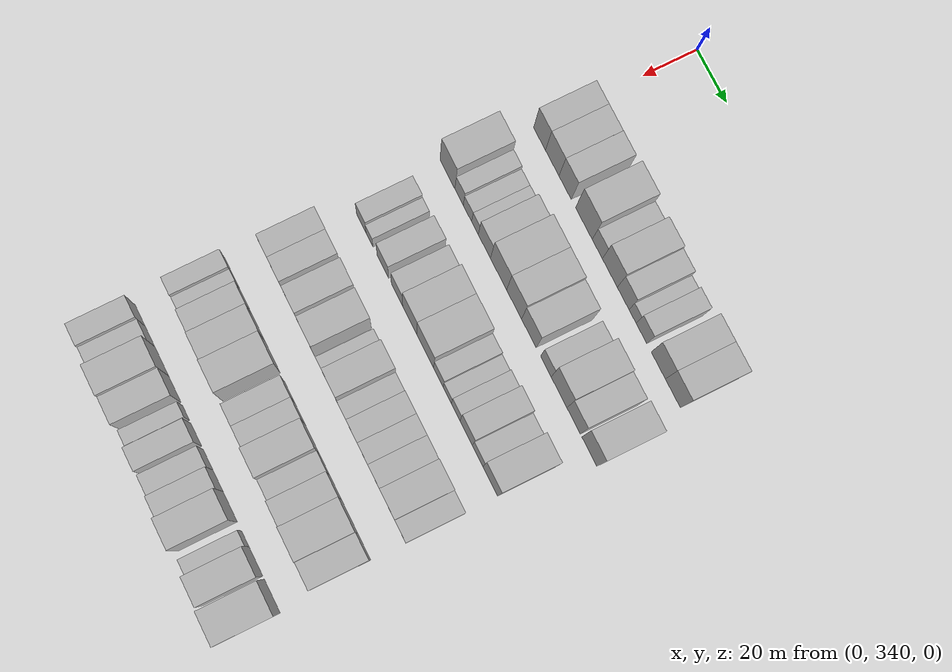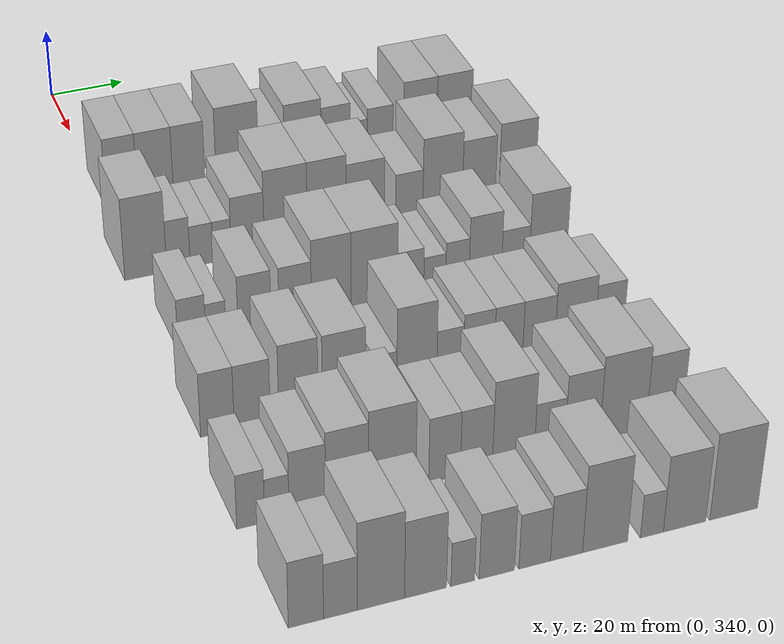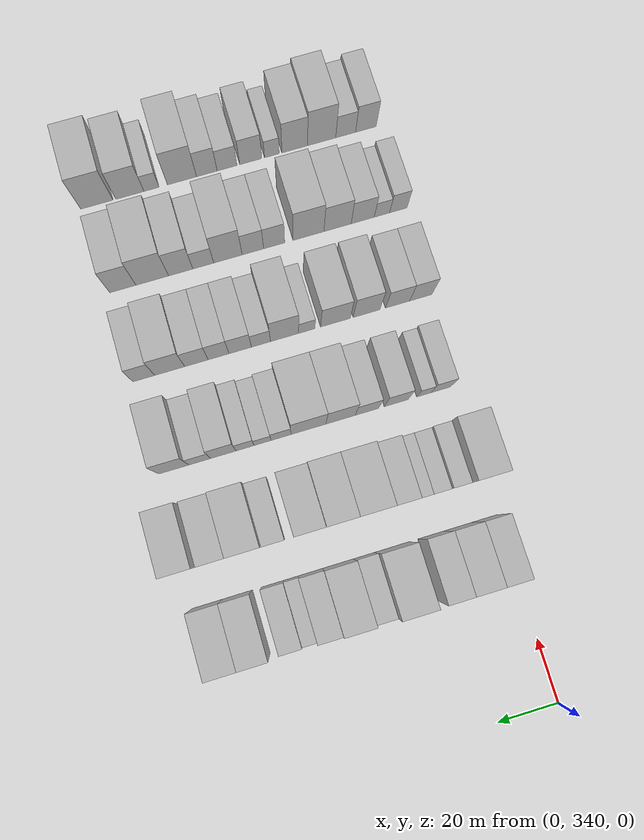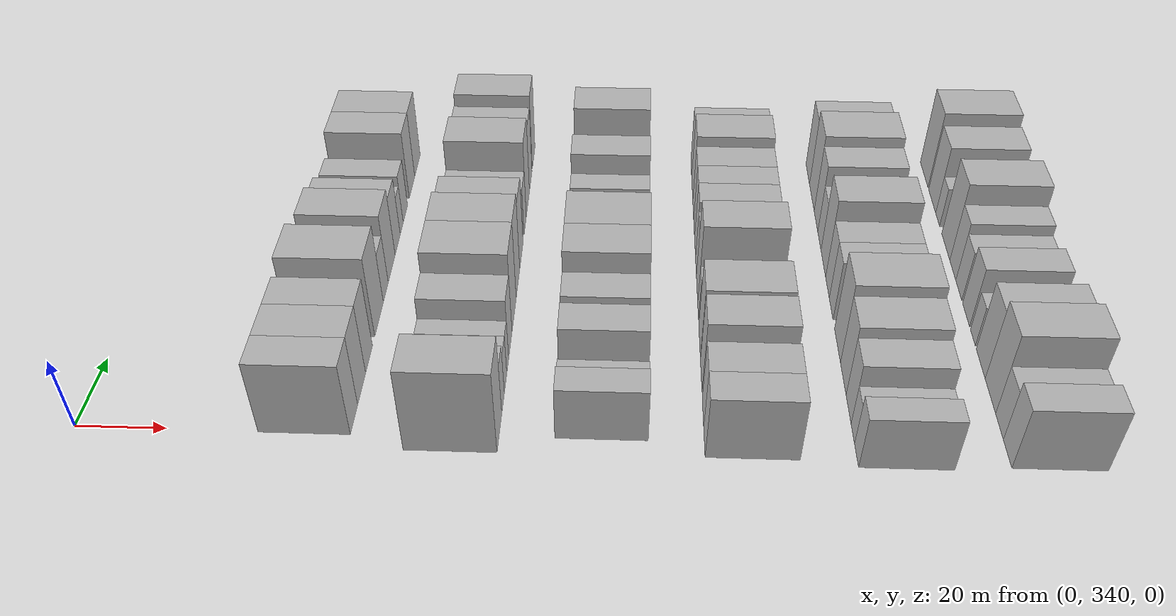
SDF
<sdf version="1.6">
 <world name="default">
  <model name="building_98">
   <static>1</static>
   <pose>50.0000 343.9629 0 0.000000 0.000000 0.000000</pose>
   <link name="link">
    <pose>0 0 10.50 0 0 0</pose>
    <collision name="collision"><geometry><box><size>20.0000 8.4268 21.0000</size></box></geometry></collision>
    <visual name="visual">
     <cast_shadows>0</cast_shadows>
     <geometry><box><size>20.0000 8.4268 21.0000</size></box></geometry>
     <material>
      <script>
       <uri>model://HANNAS_wall/materials/scripts</uri>
       <uri>model://HANNAS_wall/materials/textures</uri>
       <name>vrc/HANNAS_wall</name>
      </script>
     </material>
    </visual>
   </link>
  </model>
  <model name="building_99">
   <static>1</static>
   <pose>50.0000 352.9538 0 0.000000 0.000000 0.000000</pose>
   <link name="link">
    <pose>0 0 10.50 0 0 0</pose>
    <collision name="collision"><geometry><box><size>20.0000 9.5550 21.0000</size></box></geometry></collision>
    <visual name="visual">
     <cast_shadows>0</cast_shadows>
     <geometry><box><size>20.0000 9.5550 21.0000</size></box></geometry>
     <material>
      <script>
       <uri>model://HANNAS_wall/materials/scripts</uri>
       <uri>model://HANNAS_wall/materials/textures</uri>
       <name>vrc/HANNAS_wall</name>
      </script>
     </material>
    </visual>
   </link>
  </model>
  <model name="building_100">
   <static>1</static>
   <pose>50.0000 362.0524 0 0.000000 0.000000 0.000000</pose>
   <link name="link">
    <pose>0 0 10.50 0 0 0</pose>
    <collision name="collision"><geometry><box><size>20.0000 8.6421 21.0000</size></box></geometry></collision>
    <visual name="visual">
     <cast_shadows>0</cast_shadows>
     <geometry><box><size>20.0000 8.6421 21.0000</size></box></geometry>
     <material>
      <script>
       <uri>model://HANNAS_wall/materials/scripts</uri>
       <uri>model://HANNAS_wall/materials/textures</uri>
       <name>vrc/HANNAS_wall</name>
      </script>
     </material>
    </visual>
   </link>
  </model>
  <model name="building_101">
   <static>1</static>
   <pose>50.0000 375.1971 0 0.000000 0.000000 0.000000</pose>
   <link name="link">
    <pose>0 0 12.00 0 0 0</pose>
    <collision name="collision"><geometry><box><size>20.0000 11.6472 24.0000</size></box></geometry></collision>
    <visual name="visual">
     <cast_shadows>0</cast_shadows>
     <geometry><box><size>20.0000 11.6472 24.0000</size></box></geometry>
     <material>
      <script>
       <uri>model://HANNAS_wall/materials/scripts</uri>
       <uri>model://HANNAS_wall/materials/textures</uri>
       <name>vrc/HANNAS_wall</name>
      </script>
     </material>
    </visual>
   </link>
  </model>
  <model name="building_102">
   <static>1</static>
   <pose>50.0000 384.5535 0 0.000000 0.000000 0.000000</pose>
   <link name="link">
    <pose>0 0 7.50 0 0 0</pose>
    <collision name="collision"><geometry><box><size>20.0000 7.0658 15.0000</size></box></geometry></collision>
    <visual name="visual">
     <cast_shadows>0</cast_shadows>
     <geometry><box><size>20.0000 7.0658 15.0000</size></box></geometry>
     <material>
      <script>
       <uri>model://HANNAS_wall/materials/scripts</uri>
       <uri>model://HANNAS_wall/materials/textures</uri>
       <name>vrc/HANNAS_wall</name>
      </script>
     </material>
    </visual>
   </link>
  </model>
  <model name="building_103">
   <static>1</static>
   <pose>50.0000 393.2509 0 0.000000 0.000000 0.000000</pose>
   <link name="link">
    <pose>0 0 10.50 0 0 0</pose>
    <collision name="collision"><geometry><box><size>20.0000 10.3289 21.0000</size></box></geometry></collision>
    <visual name="visual">
     <cast_shadows>0</cast_shadows>
     <geometry><box><size>20.0000 10.3289 21.0000</size></box></geometry>
     <material>
      <script>
       <uri>model://HANNAS_wall/materials/scripts</uri>
       <uri>model://HANNAS_wall/materials/textures</uri>
       <name>vrc/HANNAS_wall</name>
      </script>
     </material>
    </visual>
   </link>
  </model>
  <model name="building_104">
   <static>1</static>
   <pose>50.0000 402.4417 0 0.000000 0.000000 0.000000</pose>
   <link name="link">
    <pose>0 0 9.00 0 0 0</pose>
    <collision name="collision"><geometry><box><size>20.0000 8.0527 18.0000</size></box></geometry></collision>
    <visual name="visual">
     <cast_shadows>0</cast_shadows>
     <geometry><box><size>20.0000 8.0527 18.0000</size></box></geometry>
     <material>
      <script>
       <uri>model://HANNAS_wall/materials/scripts</uri>
       <uri>model://HANNAS_wall/materials/textures</uri>
       <name>vrc/HANNAS_wall</name>
      </script>
     </material>
    </visual>
   </link>
  </model>
  <model name="building_105">
   <static>1</static>
   <pose>50.0000 408.8727 0 0.000000 0.000000 0.000000</pose>
   <link name="link">
    <pose>0 0 6.00 0 0 0</pose>
    <collision name="collision"><geometry><box><size>20.0000 4.8091 12.0000</size></box></geometry></collision>
    <visual name="visual">
     <cast_shadows>0</cast_shadows>
     <geometry><box><size>20.0000 4.8091 12.0000</size></box></geometry>
     <material>
      <script>
       <uri>model://HANNAS_wall/materials/scripts</uri>
       <uri>model://HANNAS_wall/materials/textures</uri>
       <name>vrc/HANNAS_wall</name>
      </script>
     </material>
    </visual>
   </link>
  </model>
  <model name="building_106">
   <static>1</static>
   <pose>50.0000 414.9271 0 0.000000 0.000000 0.000000</pose>
   <link name="link">
    <pose>0 0 7.50 0 0 0</pose>
    <collision name="collision"><geometry><box><size>20.0000 7.2997 15.0000</size></box></geometry></collision>
    <visual name="visual">
     <cast_shadows>0</cast_shadows>
     <geometry><box><size>20.0000 7.2997 15.0000</size></box></geometry>
     <material>
      <script>
       <uri>model://HANNAS_wall/materials/scripts</uri>
       <uri>model://HANNAS_wall/materials/textures</uri>
       <name>vrc/HANNAS_wall</name>
      </script>
     </material>
    </visual>
   </link>
  </model>
  <model name="building_107">
   <static>1</static>
   <pose>50.0000 426.3813 0 0.000000 0.000000 0.000000</pose>
   <link name="link">
    <pose>0 0 10.50 0 0 0</pose>
    <collision name="collision"><geometry><box><size>20.0000 9.6088 21.0000</size></box></geometry></collision>
    <visual name="visual">
     <cast_shadows>0</cast_shadows>
     <geometry><box><size>20.0000 9.6088 21.0000</size></box></geometry>
     <material>
      <script>
       <uri>model://HANNAS_wall/materials/scripts</uri>
       <uri>model://HANNAS_wall/materials/textures</uri>
       <name>vrc/HANNAS_wall</name>
      </script>
     </material>
    </visual>
   </link>
  </model>
  <model name="building_108">
   <static>1</static>
   <pose>50.0000 436.2255 0 0.000000 0.000000 0.000000</pose>
   <link name="link">
    <pose>0 0 10.50 0 0 0</pose>
    <collision name="collision"><geometry><box><size>20.0000 10.0796 21.0000</size></box></geometry></collision>
    <visual name="visual">
     <cast_shadows>0</cast_shadows>
     <geometry><box><size>20.0000 10.0796 21.0000</size></box></geometry>
     <material>
      <script>
       <uri>model://HANNAS_wall/materials/scripts</uri>
       <uri>model://HANNAS_wall/materials/textures</uri>
       <name>vrc/HANNAS_wall</name>
      </script>
     </material>
    </visual>
   </link>
  </model>
  <model name="building_214">
   <static>1</static>
   <pose>82.0000 341.3594 0 0.000000 0.000000 0.000000</pose>
   <link name="link">
    <pose>0 0 12.00 0 0 0</pose>
    <collision name="collision"><geometry><box><size>20.0000 10.7366 24.0000</size></box></geometry></collision>
    <visual name="visual">
     <cast_shadows>0</cast_shadows>
     <geometry><box><size>20.0000 10.7366 24.0000</size></box></geometry>
     <material>
      <script>
       <uri>model://HANNAS_wall/materials/scripts</uri>
       <uri>model://HANNAS_wall/materials/textures</uri>
       <name>vrc/HANNAS_wall</name>
      </script>
     </material>
    </visual>
   </link>
  </model>
  <model name="building_215">
   <static>1</static>
   <pose>82.0000 349.7554 0 0.000000 0.000000 0.000000</pose>
   <link name="link">
    <pose>0 0 7.50 0 0 0</pose>
    <collision name="collision"><geometry><box><size>20.0000 6.0556 15.0000</size></box></geometry></collision>
    <visual name="visual">
     <cast_shadows>0</cast_shadows>
     <geometry><box><size>20.0000 6.0556 15.0000</size></box></geometry>
     <material>
      <script>
       <uri>model://HANNAS_wall/materials/scripts</uri>
       <uri>model://HANNAS_wall/materials/textures</uri>
       <name>vrc/HANNAS_wall</name>
      </script>
     </material>
    </visual>
   </link>
  </model>
  <model name="building_216">
   <static>1</static>
   <pose>82.0000 355.7447 0 0.000000 0.000000 0.000000</pose>
   <link name="link">
    <pose>0 0 6.00 0 0 0</pose>
    <collision name="collision"><geometry><box><size>20.0000 5.9231 12.0000</size></box></geometry></collision>
    <visual name="visual">
     <cast_shadows>0</cast_shadows>
     <geometry><box><size>20.0000 5.9231 12.0000</size></box></geometry>
     <material>
      <script>
       <uri>model://HANNAS_wall/materials/scripts</uri>
       <uri>model://HANNAS_wall/materials/textures</uri>
       <name>vrc/HANNAS_wall</name>
      </script>
     </material>
    </visual>
   </link>
  </model>
  <model name="building_217">
   <static>1</static>
   <pose>82.0000 361.1078 0 0.000000 0.000000 0.000000</pose>
   <link name="link">
    <pose>0 0 6.00 0 0 0</pose>
    <collision name="collision"><geometry><box><size>20.0000 4.8030 12.0000</size></box></geometry></collision>
    <visual name="visual">
     <cast_shadows>0</cast_shadows>
     <geometry><box><size>20.0000 4.8030 12.0000</size></box></geometry>
     <material>
      <script>
       <uri>model://HANNAS_wall/materials/scripts</uri>
       <uri>model://HANNAS_wall/materials/textures</uri>
       <name>vrc/HANNAS_wall</name>
      </script>
     </material>
    </visual>
   </link>
  </model>
  <model name="building_218">
   <static>1</static>
   <pose>82.0000 367.8355 0 0.000000 0.000000 0.000000</pose>
   <link name="link">
    <pose>0 0 9.00 0 0 0</pose>
    <collision name="collision"><geometry><box><size>20.0000 8.6523 18.0000</size></box></geometry></collision>
    <visual name="visual">
     <cast_shadows>0</cast_shadows>
     <geometry><box><size>20.0000 8.6523 18.0000</size></box></geometry>
     <material>
      <script>
       <uri>model://HANNAS_wall/materials/scripts</uri>
       <uri>model://HANNAS_wall/materials/textures</uri>
       <name>vrc/HANNAS_wall</name>
      </script>
     </material>
    </visual>
   </link>
  </model>
  <model name="building_219">
   <static>1</static>
   <pose>82.0000 377.8743 0 0.000000 0.000000 0.000000</pose>
   <link name="link">
    <pose>0 0 12.00 0 0 0</pose>
    <collision name="collision"><geometry><box><size>20.0000 11.4253 24.0000</size></box></geometry></collision>
    <visual name="visual">
     <cast_shadows>0</cast_shadows>
     <geometry><box><size>20.0000 11.4253 24.0000</size></box></geometry>
     <material>
      <script>
       <uri>model://HANNAS_wall/materials/scripts</uri>
       <uri>model://HANNAS_wall/materials/textures</uri>
       <name>vrc/HANNAS_wall</name>
      </script>
     </material>
    </visual>
   </link>
  </model>
  <model name="building_220">
   <static>1</static>
   <pose>82.0000 388.8088 0 0.000000 0.000000 0.000000</pose>
   <link name="link">
    <pose>0 0 12.00 0 0 0</pose>
    <collision name="collision"><geometry><box><size>20.0000 10.4438 24.0000</size></box></geometry></collision>
    <visual name="visual">
     <cast_shadows>0</cast_shadows>
     <geometry><box><size>20.0000 10.4438 24.0000</size></box></geometry>
     <material>
      <script>
       <uri>model://HANNAS_wall/materials/scripts</uri>
       <uri>model://HANNAS_wall/materials/textures</uri>
       <name>vrc/HANNAS_wall</name>
      </script>
     </material>
    </visual>
   </link>
  </model>
  <model name="building_221">
   <static>1</static>
   <pose>82.0000 399.1464 0 0.000000 0.000000 0.000000</pose>
   <link name="link">
    <pose>0 0 10.50 0 0 0</pose>
    <collision name="collision"><geometry><box><size>20.0000 10.2313 21.0000</size></box></geometry></collision>
    <visual name="visual">
     <cast_shadows>0</cast_shadows>
     <geometry><box><size>20.0000 10.2313 21.0000</size></box></geometry>
     <material>
      <script>
       <uri>model://HANNAS_wall/materials/scripts</uri>
       <uri>model://HANNAS_wall/materials/textures</uri>
       <name>vrc/HANNAS_wall</name>
      </script>
     </material>
    </visual>
   </link>
  </model>
  <model name="building_222">
   <static>1</static>
   <pose>82.0000 410.9798 0 0.000000 0.000000 0.000000</pose>
   <link name="link">
    <pose>0 0 7.50 0 0 0</pose>
    <collision name="collision"><geometry><box><size>20.0000 7.4356 15.0000</size></box></geometry></collision>
    <visual name="visual">
     <cast_shadows>0</cast_shadows>
     <geometry><box><size>20.0000 7.4356 15.0000</size></box></geometry>
     <material>
      <script>
       <uri>model://HANNAS_wall/materials/scripts</uri>
       <uri>model://HANNAS_wall/materials/textures</uri>
       <name>vrc/HANNAS_wall</name>
      </script>
     </material>
    </visual>
   </link>
  </model>
  <model name="building_223">
   <static>1</static>
   <pose>82.0000 420.1331 0 0.000000 0.000000 0.000000</pose>
   <link name="link">
    <pose>0 0 12.00 0 0 0</pose>
    <collision name="collision"><geometry><box><size>20.0000 10.8712 24.0000</size></box></geometry></collision>
    <visual name="visual">
     <cast_shadows>0</cast_shadows>
     <geometry><box><size>20.0000 10.8712 24.0000</size></box></geometry>
     <material>
      <script>
       <uri>model://HANNAS_wall/materials/scripts</uri>
       <uri>model://HANNAS_wall/materials/textures</uri>
       <name>vrc/HANNAS_wall</name>
      </script>
     </material>
    </visual>
   </link>
  </model>
  <model name="building_224">
   <static>1</static>
   <pose>82.0000 430.1492 0 0.000000 0.000000 0.000000</pose>
   <link name="link">
    <pose>0 0 10.50 0 0 0</pose>
    <collision name="collision"><geometry><box><size>20.0000 9.1609 21.0000</size></box></geometry></collision>
    <visual name="visual">
     <cast_shadows>0</cast_shadows>
     <geometry><box><size>20.0000 9.1609 21.0000</size></box></geometry>
     <material>
      <script>
       <uri>model://HANNAS_wall/materials/scripts</uri>
       <uri>model://HANNAS_wall/materials/textures</uri>
       <name>vrc/HANNAS_wall</name>
      </script>
     </material>
    </visual>
   </link>
  </model>
  <model name="building_225">
   <static>1</static>
   <pose>82.0000 440.8472 0 0.000000 0.000000 0.000000</pose>
   <link name="link">
    <pose>0 0 12.00 0 0 0</pose>
    <collision name="collision"><geometry><box><size>20.0000 10.2350 24.0000</size></box></geometry></collision>
    <visual name="visual">
     <cast_shadows>0</cast_shadows>
     <geometry><box><size>20.0000 10.2350 24.0000</size></box></geometry>
     <material>
      <script>
       <uri>model://HANNAS_wall/materials/scripts</uri>
       <uri>model://HANNAS_wall/materials/textures</uri>
       <name>vrc/HANNAS_wall</name>
      </script>
     </material>
    </visual>
   </link>
  </model>
  <model name="building_328">
   <static>1</static>
   <pose>114.0000 343.8087 0 0.000000 0.000000 0.000000</pose>
   <link name="link">
    <pose>0 0 7.50 0 0 0</pose>
    <collision name="collision"><geometry><box><size>20.0000 6.8771 15.0000</size></box></geometry></collision>
    <visual name="visual">
     <cast_shadows>0</cast_shadows>
     <geometry><box><size>20.0000 6.8771 15.0000</size></box></geometry>
     <material>
      <script>
       <uri>model://HANNAS_wall/materials/scripts</uri>
       <uri>model://HANNAS_wall/materials/textures</uri>
       <name>vrc/HANNAS_wall</name>
      </script>
     </material>
    </visual>
   </link>
  </model>
  <model name="building_329">
   <static>1</static>
   <pose>114.0000 349.7497 0 0.000000 0.000000 0.000000</pose>
   <link name="link">
    <pose>0 0 6.00 0 0 0</pose>
    <collision name="collision"><geometry><box><size>20.0000 5.0047 12.0000</size></box></geometry></collision>
    <visual name="visual">
     <cast_shadows>0</cast_shadows>
     <geometry><box><size>20.0000 5.0047 12.0000</size></box></geometry>
     <material>
      <script>
       <uri>model://HANNAS_wall/materials/scripts</uri>
       <uri>model://HANNAS_wall/materials/textures</uri>
       <name>vrc/HANNAS_wall</name>
      </script>
     </material>
    </visual>
   </link>
  </model>
  <model name="building_330">
   <static>1</static>
   <pose>114.0000 359.3964 0 0.000000 0.000000 0.000000</pose>
   <link name="link">
    <pose>0 0 9.00 0 0 0</pose>
    <collision name="collision"><geometry><box><size>20.0000 8.2889 18.0000</size></box></geometry></collision>
    <visual name="visual">
     <cast_shadows>0</cast_shadows>
     <geometry><box><size>20.0000 8.2889 18.0000</size></box></geometry>
     <material>
      <script>
       <uri>model://HANNAS_wall/materials/scripts</uri>
       <uri>model://HANNAS_wall/materials/textures</uri>
       <name>vrc/HANNAS_wall</name>
      </script>
     </material>
    </visual>
   </link>
  </model>
  <model name="building_331">
   <static>1</static>
   <pose>114.0000 369.6125 0 0.000000 0.000000 0.000000</pose>
   <link name="link">
    <pose>0 0 9.00 0 0 0</pose>
    <collision name="collision"><geometry><box><size>20.0000 8.1433 18.0000</size></box></geometry></collision>
    <visual name="visual">
     <cast_shadows>0</cast_shadows>
     <geometry><box><size>20.0000 8.1433 18.0000</size></box></geometry>
     <material>
      <script>
       <uri>model://HANNAS_wall/materials/scripts</uri>
       <uri>model://HANNAS_wall/materials/textures</uri>
       <name>vrc/HANNAS_wall</name>
      </script>
     </material>
    </visual>
   </link>
  </model>
  <model name="building_332">
   <static>1</static>
   <pose>114.0000 378.7136 0 0.000000 0.000000 0.000000</pose>
   <link name="link">
    <pose>0 0 12.00 0 0 0</pose>
    <collision name="collision"><geometry><box><size>20.0000 10.0587 24.0000</size></box></geometry></collision>
    <visual name="visual">
     <cast_shadows>0</cast_shadows>
     <geometry><box><size>20.0000 10.0587 24.0000</size></box></geometry>
     <material>
      <script>
       <uri>model://HANNAS_wall/materials/scripts</uri>
       <uri>model://HANNAS_wall/materials/textures</uri>
       <name>vrc/HANNAS_wall</name>
      </script>
     </material>
    </visual>
   </link>
  </model>
  <model name="building_333">
   <static>1</static>
   <pose>114.0000 389.7357 0 0.000000 0.000000 0.000000</pose>
   <link name="link">
    <pose>0 0 12.00 0 0 0</pose>
    <collision name="collision"><geometry><box><size>20.0000 11.9856 24.0000</size></box></geometry></collision>
    <visual name="visual">
     <cast_shadows>0</cast_shadows>
     <geometry><box><size>20.0000 11.9856 24.0000</size></box></geometry>
     <material>
      <script>
       <uri>model://HANNAS_wall/materials/scripts</uri>
       <uri>model://HANNAS_wall/materials/textures</uri>
       <name>vrc/HANNAS_wall</name>
      </script>
     </material>
    </visual>
   </link>
  </model>
  <model name="building_334">
   <static>1</static>
   <pose>114.0000 399.1309 0 0.000000 0.000000 0.000000</pose>
   <link name="link">
    <pose>0 0 7.50 0 0 0</pose>
    <collision name="collision"><geometry><box><size>20.0000 6.8048 15.0000</size></box></geometry></collision>
    <visual name="visual">
     <cast_shadows>0</cast_shadows>
     <geometry><box><size>20.0000 6.8048 15.0000</size></box></geometry>
     <material>
      <script>
       <uri>model://HANNAS_wall/materials/scripts</uri>
       <uri>model://HANNAS_wall/materials/textures</uri>
       <name>vrc/HANNAS_wall</name>
      </script>
     </material>
    </visual>
   </link>
  </model>
  <model name="building_335">
   <static>1</static>
   <pose>114.0000 405.4025 0 0.000000 0.000000 0.000000</pose>
   <link name="link">
    <pose>0 0 6.00 0 0 0</pose>
    <collision name="collision"><geometry><box><size>20.0000 5.7385 12.0000</size></box></geometry></collision>
    <visual name="visual">
     <cast_shadows>0</cast_shadows>
     <geometry><box><size>20.0000 5.7385 12.0000</size></box></geometry>
     <material>
      <script>
       <uri>model://HANNAS_wall/materials/scripts</uri>
       <uri>model://HANNAS_wall/materials/textures</uri>
       <name>vrc/HANNAS_wall</name>
      </script>
     </material>
    </visual>
   </link>
  </model>
  <model name="building_336">
   <static>1</static>
   <pose>114.0000 411.3300 0 0.000000 0.000000 0.000000</pose>
   <link name="link">
    <pose>0 0 7.50 0 0 0</pose>
    <collision name="collision"><geometry><box><size>20.0000 6.1165 15.0000</size></box></geometry></collision>
    <visual name="visual">
     <cast_shadows>0</cast_shadows>
     <geometry><box><size>20.0000 6.1165 15.0000</size></box></geometry>
     <material>
      <script>
       <uri>model://HANNAS_wall/materials/scripts</uri>
       <uri>model://HANNAS_wall/materials/textures</uri>
       <name>vrc/HANNAS_wall</name>
      </script>
     </material>
    </visual>
   </link>
  </model>
  <model name="building_337">
   <static>1</static>
   <pose>114.0000 418.6988 0 0.000000 0.000000 0.000000</pose>
   <link name="link">
    <pose>0 0 10.50 0 0 0</pose>
    <collision name="collision"><geometry><box><size>20.0000 8.6212 21.0000</size></box></geometry></collision>
    <visual name="visual">
     <cast_shadows>0</cast_shadows>
     <geometry><box><size>20.0000 8.6212 21.0000</size></box></geometry>
     <material>
      <script>
       <uri>model://HANNAS_wall/materials/scripts</uri>
       <uri>model://HANNAS_wall/materials/textures</uri>
       <name>vrc/HANNAS_wall</name>
      </script>
     </material>
    </visual>
   </link>
  </model>
  <model name="building_338">
   <static>1</static>
   <pose>114.0000 426.7123 0 0.000000 0.000000 0.000000</pose>
   <link name="link">
    <pose>0 0 7.50 0 0 0</pose>
    <collision name="collision"><geometry><box><size>20.0000 7.4058 15.0000</size></box></geometry></collision>
    <visual name="visual">
     <cast_shadows>0</cast_shadows>
     <geometry><box><size>20.0000 7.4058 15.0000</size></box></geometry>
     <material>
      <script>
       <uri>model://HANNAS_wall/materials/scripts</uri>
       <uri>model://HANNAS_wall/materials/textures</uri>
       <name>vrc/HANNAS_wall</name>
      </script>
     </material>
    </visual>
   </link>
  </model>
  <model name="building_339">
   <static>1</static>
   <pose>114.0000 435.4650 0 0.000000 0.000000 0.000000</pose>
   <link name="link">
    <pose>0 0 12.00 0 0 0</pose>
    <collision name="collision"><geometry><box><size>20.0000 10.0996 24.0000</size></box></geometry></collision>
    <visual name="visual">
     <cast_shadows>0</cast_shadows>
     <geometry><box><size>20.0000 10.0996 24.0000</size></box></geometry>
     <material>
      <script>
       <uri>model://HANNAS_wall/materials/scripts</uri>
       <uri>model://HANNAS_wall/materials/textures</uri>
       <name>vrc/HANNAS_wall</name>
      </script>
     </material>
    </visual>
   </link>
  </model>
  <model name="building_450">
   <static>1</static>
   <pose>146.0000 340.2707 0 0.000000 0.000000 0.000000</pose>
   <link name="link">
    <pose>0 0 9.00 0 0 0</pose>
    <collision name="collision"><geometry><box><size>20.0000 7.9386 18.0000</size></box></geometry></collision>
    <visual name="visual">
     <cast_shadows>0</cast_shadows>
     <geometry><box><size>20.0000 7.9386 18.0000</size></box></geometry>
     <material>
      <script>
       <uri>model://HANNAS_wall/materials/scripts</uri>
       <uri>model://HANNAS_wall/materials/textures</uri>
       <name>vrc/HANNAS_wall</name>
      </script>
     </material>
    </visual>
   </link>
  </model>
  <model name="building_451">
   <static>1</static>
   <pose>146.0000 348.5396 0 0.000000 0.000000 0.000000</pose>
   <link name="link">
    <pose>0 0 9.00 0 0 0</pose>
    <collision name="collision"><geometry><box><size>20.0000 8.5992 18.0000</size></box></geometry></collision>
    <visual name="visual">
     <cast_shadows>0</cast_shadows>
     <geometry><box><size>20.0000 8.5992 18.0000</size></box></geometry>
     <material>
      <script>
       <uri>model://HANNAS_wall/materials/scripts</uri>
       <uri>model://HANNAS_wall/materials/textures</uri>
       <name>vrc/HANNAS_wall</name>
      </script>
     </material>
    </visual>
   </link>
  </model>
  <model name="building_452">
   <static>1</static>
   <pose>146.0000 359.5745 0 0.000000 0.000000 0.000000</pose>
   <link name="link">
    <pose>0 0 10.50 0 0 0</pose>
    <collision name="collision"><geometry><box><size>20.0000 9.4705 21.0000</size></box></geometry></collision>
    <visual name="visual">
     <cast_shadows>0</cast_shadows>
     <geometry><box><size>20.0000 9.4705 21.0000</size></box></geometry>
     <material>
      <script>
       <uri>model://HANNAS_wall/materials/scripts</uri>
       <uri>model://HANNAS_wall/materials/textures</uri>
       <name>vrc/HANNAS_wall</name>
      </script>
     </material>
    </visual>
   </link>
  </model>
  <model name="building_453">
   <static>1</static>
   <pose>146.0000 370.5487 0 0.000000 0.000000 0.000000</pose>
   <link name="link">
    <pose>0 0 10.50 0 0 0</pose>
    <collision name="collision"><geometry><box><size>20.0000 10.4779 21.0000</size></box></geometry></collision>
    <visual name="visual">
     <cast_shadows>0</cast_shadows>
     <geometry><box><size>20.0000 10.4779 21.0000</size></box></geometry>
     <material>
      <script>
       <uri>model://HANNAS_wall/materials/scripts</uri>
       <uri>model://HANNAS_wall/materials/textures</uri>
       <name>vrc/HANNAS_wall</name>
      </script>
     </material>
    </visual>
   </link>
  </model>
  <model name="building_454">
   <static>1</static>
   <pose>146.0000 380.6337 0 0.000000 0.000000 0.000000</pose>
   <link name="link">
    <pose>0 0 6.00 0 0 0</pose>
    <collision name="collision"><geometry><box><size>20.0000 5.6920 12.0000</size></box></geometry></collision>
    <visual name="visual">
     <cast_shadows>0</cast_shadows>
     <geometry><box><size>20.0000 5.6920 12.0000</size></box></geometry>
     <material>
      <script>
       <uri>model://HANNAS_wall/materials/scripts</uri>
       <uri>model://HANNAS_wall/materials/textures</uri>
       <name>vrc/HANNAS_wall</name>
      </script>
     </material>
    </visual>
   </link>
  </model>
  <model name="building_455">
   <static>1</static>
   <pose>146.0000 388.3983 0 0.000000 0.000000 0.000000</pose>
   <link name="link">
    <pose>0 0 12.00 0 0 0</pose>
    <collision name="collision"><geometry><box><size>20.0000 9.8373 24.0000</size></box></geometry></collision>
    <visual name="visual">
     <cast_shadows>0</cast_shadows>
     <geometry><box><size>20.0000 9.8373 24.0000</size></box></geometry>
     <material>
      <script>
       <uri>model://HANNAS_wall/materials/scripts</uri>
       <uri>model://HANNAS_wall/materials/textures</uri>
       <name>vrc/HANNAS_wall</name>
      </script>
     </material>
    </visual>
   </link>
  </model>
  <model name="building_456">
   <static>1</static>
   <pose>146.0000 396.6386 0 0.000000 0.000000 0.000000</pose>
   <link name="link">
    <pose>0 0 7.50 0 0 0</pose>
    <collision name="collision"><geometry><box><size>20.0000 6.6433 15.0000</size></box></geometry></collision>
    <visual name="visual">
     <cast_shadows>0</cast_shadows>
     <geometry><box><size>20.0000 6.6433 15.0000</size></box></geometry>
     <material>
      <script>
       <uri>model://HANNAS_wall/materials/scripts</uri>
       <uri>model://HANNAS_wall/materials/textures</uri>
       <name>vrc/HANNAS_wall</name>
      </script>
     </material>
    </visual>
   </link>
  </model>
  <model name="building_457">
   <static>1</static>
   <pose>146.0000 403.8555 0 0.000000 0.000000 0.000000</pose>
   <link name="link">
    <pose>0 0 9.00 0 0 0</pose>
    <collision name="collision"><geometry><box><size>20.0000 7.7905 18.0000</size></box></geometry></collision>
    <visual name="visual">
     <cast_shadows>0</cast_shadows>
     <geometry><box><size>20.0000 7.7905 18.0000</size></box></geometry>
     <material>
      <script>
       <uri>model://HANNAS_wall/materials/scripts</uri>
       <uri>model://HANNAS_wall/materials/textures</uri>
       <name>vrc/HANNAS_wall</name>
      </script>
     </material>
    </visual>
   </link>
  </model>
  <model name="building_458">
   <static>1</static>
   <pose>146.0000 411.3577 0 0.000000 0.000000 0.000000</pose>
   <link name="link">
    <pose>0 0 9.00 0 0 0</pose>
    <collision name="collision"><geometry><box><size>20.0000 7.2138 18.0000</size></box></geometry></collision>
    <visual name="visual">
     <cast_shadows>0</cast_shadows>
     <geometry><box><size>20.0000 7.2138 18.0000</size></box></geometry>
     <material>
      <script>
       <uri>model://HANNAS_wall/materials/scripts</uri>
       <uri>model://HANNAS_wall/materials/textures</uri>
       <name>vrc/HANNAS_wall</name>
      </script>
     </material>
    </visual>
   </link>
  </model>
  <model name="building_459">
   <static>1</static>
   <pose>146.0000 419.0470 0 0.000000 0.000000 0.000000</pose>
   <link name="link">
    <pose>0 0 9.00 0 0 0</pose>
    <collision name="collision"><geometry><box><size>20.0000 8.1649 18.0000</size></box></geometry></collision>
    <visual name="visual">
     <cast_shadows>0</cast_shadows>
     <geometry><box><size>20.0000 8.1649 18.0000</size></box></geometry>
     <material>
      <script>
       <uri>model://HANNAS_wall/materials/scripts</uri>
       <uri>model://HANNAS_wall/materials/textures</uri>
       <name>vrc/HANNAS_wall</name>
      </script>
     </material>
    </visual>
   </link>
  </model>
  <model name="building_460">
   <static>1</static>
   <pose>146.0000 428.3027 0 0.000000 0.000000 0.000000</pose>
   <link name="link">
    <pose>0 0 10.50 0 0 0</pose>
    <collision name="collision"><geometry><box><size>20.0000 10.3466 21.0000</size></box></geometry></collision>
    <visual name="visual">
     <cast_shadows>0</cast_shadows>
     <geometry><box><size>20.0000 10.3466 21.0000</size></box></geometry>
     <material>
      <script>
       <uri>model://HANNAS_wall/materials/scripts</uri>
       <uri>model://HANNAS_wall/materials/textures</uri>
       <name>vrc/HANNAS_wall</name>
      </script>
     </material>
    </visual>
   </link>
  </model>
  <model name="building_461">
   <static>1</static>
   <pose>146.0000 437.2226 0 0.000000 0.000000 0.000000</pose>
   <link name="link">
    <pose>0 0 9.00 0 0 0</pose>
    <collision name="collision"><geometry><box><size>20.0000 7.4932 18.0000</size></box></geometry></collision>
    <visual name="visual">
     <cast_shadows>0</cast_shadows>
     <geometry><box><size>20.0000 7.4932 18.0000</size></box></geometry>
     <material>
      <script>
       <uri>model://HANNAS_wall/materials/scripts</uri>
       <uri>model://HANNAS_wall/materials/textures</uri>
       <name>vrc/HANNAS_wall</name>
      </script>
     </material>
    </visual>
   </link>
  </model>
  <model name="building_567">
   <static>1</static>
   <pose>178.0000 337.9464 0 0.000000 0.000000 0.000000</pose>
   <link name="link">
    <pose>0 0 7.50 0 0 0</pose>
    <collision name="collision"><geometry><box><size>20.0000 6.3125 15.0000</size></box></geometry></collision>
    <visual name="visual">
     <cast_shadows>0</cast_shadows>
     <geometry><box><size>20.0000 6.3125 15.0000</size></box></geometry>
     <material>
      <script>
       <uri>model://HANNAS_wall/materials/scripts</uri>
       <uri>model://HANNAS_wall/materials/textures</uri>
       <name>vrc/HANNAS_wall</name>
      </script>
     </material>
    </visual>
   </link>
  </model>
  <model name="building_568">
   <static>1</static>
   <pose>178.0000 343.8651 0 0.000000 0.000000 0.000000</pose>
   <link name="link">
    <pose>0 0 6.00 0 0 0</pose>
    <collision name="collision"><geometry><box><size>20.0000 5.5249 12.0000</size></box></geometry></collision>
    <visual name="visual">
     <cast_shadows>0</cast_shadows>
     <geometry><box><size>20.0000 5.5249 12.0000</size></box></geometry>
     <material>
      <script>
       <uri>model://HANNAS_wall/materials/scripts</uri>
       <uri>model://HANNAS_wall/materials/textures</uri>
       <name>vrc/HANNAS_wall</name>
      </script>
     </material>
    </visual>
   </link>
  </model>
  <model name="building_569">
   <static>1</static>
   <pose>178.0000 350.8038 0 0.000000 0.000000 0.000000</pose>
   <link name="link">
    <pose>0 0 9.00 0 0 0</pose>
    <collision name="collision"><geometry><box><size>20.0000 8.3526 18.0000</size></box></geometry></collision>
    <visual name="visual">
     <cast_shadows>0</cast_shadows>
     <geometry><box><size>20.0000 8.3526 18.0000</size></box></geometry>
     <material>
      <script>
       <uri>model://HANNAS_wall/materials/scripts</uri>
       <uri>model://HANNAS_wall/materials/textures</uri>
       <name>vrc/HANNAS_wall</name>
      </script>
     </material>
    </visual>
   </link>
  </model>
  <model name="building_570">
   <static>1</static>
   <pose>178.0000 359.8917 0 0.000000 0.000000 0.000000</pose>
   <link name="link">
    <pose>0 0 10.50 0 0 0</pose>
    <collision name="collision"><geometry><box><size>20.0000 9.8232 21.0000</size></box></geometry></collision>
    <visual name="visual">
     <cast_shadows>0</cast_shadows>
     <geometry><box><size>20.0000 9.8232 21.0000</size></box></geometry>
     <material>
      <script>
       <uri>model://HANNAS_wall/materials/scripts</uri>
       <uri>model://HANNAS_wall/materials/textures</uri>
       <name>vrc/HANNAS_wall</name>
      </script>
     </material>
    </visual>
   </link>
  </model>
  <model name="building_571">
   <static>1</static>
   <pose>178.0000 370.3410 0 0.000000 0.000000 0.000000</pose>
   <link name="link">
    <pose>0 0 12.00 0 0 0</pose>
    <collision name="collision"><geometry><box><size>20.0000 11.0753 24.0000</size></box></geometry></collision>
    <visual name="visual">
     <cast_shadows>0</cast_shadows>
     <geometry><box><size>20.0000 11.0753 24.0000</size></box></geometry>
     <material>
      <script>
       <uri>model://HANNAS_wall/materials/scripts</uri>
       <uri>model://HANNAS_wall/materials/textures</uri>
       <name>vrc/HANNAS_wall</name>
      </script>
     </material>
    </visual>
   </link>
  </model>
  <model name="building_572">
   <static>1</static>
   <pose>178.0000 382.6270 0 0.000000 0.000000 0.000000</pose>
   <link name="link">
    <pose>0 0 9.00 0 0 0</pose>
    <collision name="collision"><geometry><box><size>20.0000 7.4969 18.0000</size></box></geometry></collision>
    <visual name="visual">
     <cast_shadows>0</cast_shadows>
     <geometry><box><size>20.0000 7.4969 18.0000</size></box></geometry>
     <material>
      <script>
       <uri>model://HANNAS_wall/materials/scripts</uri>
       <uri>model://HANNAS_wall/materials/textures</uri>
       <name>vrc/HANNAS_wall</name>
      </script>
     </material>
    </visual>
   </link>
  </model>
  <model name="building_573">
   <static>1</static>
   <pose>178.0000 390.1970 0 0.000000 0.000000 0.000000</pose>
   <link name="link">
    <pose>0 0 9.00 0 0 0</pose>
    <collision name="collision"><geometry><box><size>20.0000 7.6430 18.0000</size></box></geometry></collision>
    <visual name="visual">
     <cast_shadows>0</cast_shadows>
     <geometry><box><size>20.0000 7.6430 18.0000</size></box></geometry>
     <material>
      <script>
       <uri>model://HANNAS_wall/materials/scripts</uri>
       <uri>model://HANNAS_wall/materials/textures</uri>
       <name>vrc/HANNAS_wall</name>
      </script>
     </material>
    </visual>
   </link>
  </model>
  <model name="building_574">
   <static>1</static>
   <pose>178.0000 399.0656 0 0.000000 0.000000 0.000000</pose>
   <link name="link">
    <pose>0 0 12.00 0 0 0</pose>
    <collision name="collision"><geometry><box><size>20.0000 10.0942 24.0000</size></box></geometry></collision>
    <visual name="visual">
     <cast_shadows>0</cast_shadows>
     <geometry><box><size>20.0000 10.0942 24.0000</size></box></geometry>
     <material>
      <script>
       <uri>model://HANNAS_wall/materials/scripts</uri>
       <uri>model://HANNAS_wall/materials/textures</uri>
       <name>vrc/HANNAS_wall</name>
      </script>
     </material>
    </visual>
   </link>
  </model>
  <model name="building_575">
   <static>1</static>
   <pose>178.0000 407.7987 0 0.000000 0.000000 0.000000</pose>
   <link name="link">
    <pose>0 0 7.50 0 0 0</pose>
    <collision name="collision"><geometry><box><size>20.0000 7.3720 15.0000</size></box></geometry></collision>
    <visual name="visual">
     <cast_shadows>0</cast_shadows>
     <geometry><box><size>20.0000 7.3720 15.0000</size></box></geometry>
     <material>
      <script>
       <uri>model://HANNAS_wall/materials/scripts</uri>
       <uri>model://HANNAS_wall/materials/textures</uri>
       <name>vrc/HANNAS_wall</name>
      </script>
     </material>
    </visual>
   </link>
  </model>
  <model name="building_576">
   <static>1</static>
   <pose>178.0000 415.7822 0 0.000000 0.000000 0.000000</pose>
   <link name="link">
    <pose>0 0 10.50 0 0 0</pose>
    <collision name="collision"><geometry><box><size>20.0000 8.5948 21.0000</size></box></geometry></collision>
    <visual name="visual">
     <cast_shadows>0</cast_shadows>
     <geometry><box><size>20.0000 8.5948 21.0000</size></box></geometry>
     <material>
      <script>
       <uri>model://HANNAS_wall/materials/scripts</uri>
       <uri>model://HANNAS_wall/materials/textures</uri>
       <name>vrc/HANNAS_wall</name>
      </script>
     </material>
    </visual>
   </link>
  </model>
  <model name="building_577">
   <static>1</static>
   <pose>178.0000 425.8216 0 0.000000 0.000000 0.000000</pose>
   <link name="link">
    <pose>0 0 12.00 0 0 0</pose>
    <collision name="collision"><geometry><box><size>20.0000 11.4841 24.0000</size></box></geometry></collision>
    <visual name="visual">
     <cast_shadows>0</cast_shadows>
     <geometry><box><size>20.0000 11.4841 24.0000</size></box></geometry>
     <material>
      <script>
       <uri>model://HANNAS_wall/materials/scripts</uri>
       <uri>model://HANNAS_wall/materials/textures</uri>
       <name>vrc/HANNAS_wall</name>
      </script>
     </material>
    </visual>
   </link>
  </model>
  <model name="building_578">
   <static>1</static>
   <pose>178.0000 436.1528 0 0.000000 0.000000 0.000000</pose>
   <link name="link">
    <pose>0 0 10.50 0 0 0</pose>
    <collision name="collision"><geometry><box><size>20.0000 9.1782 21.0000</size></box></geometry></collision>
    <visual name="visual">
     <cast_shadows>0</cast_shadows>
     <geometry><box><size>20.0000 9.1782 21.0000</size></box></geometry>
     <material>
      <script>
       <uri>model://HANNAS_wall/materials/scripts</uri>
       <uri>model://HANNAS_wall/materials/textures</uri>
       <name>vrc/HANNAS_wall</name>
      </script>
     </material>
    </visual>
   </link>
  </model>
  <model name="building_688">
   <static>1</static>
   <pose>210.0000 339.5408 0 0.000000 0.000000 0.000000</pose>
   <link name="link">
    <pose>0 0 9.00 0 0 0</pose>
    <collision name="collision"><geometry><box><size>20.0000 7.6292 18.0000</size></box></geometry></collision>
    <visual name="visual">
     <cast_shadows>0</cast_shadows>
     <geometry><box><size>20.0000 7.6292 18.0000</size></box></geometry>
     <material>
      <script>
       <uri>model://HANNAS_wall/materials/scripts</uri>
       <uri>model://HANNAS_wall/materials/textures</uri>
       <name>vrc/HANNAS_wall</name>
      </script>
     </material>
    </visual>
   </link>
  </model>
  <model name="building_689">
   <static>1</static>
   <pose>210.0000 347.0028 0 0.000000 0.000000 0.000000</pose>
   <link name="link">
    <pose>0 0 7.50 0 0 0</pose>
    <collision name="collision"><geometry><box><size>20.0000 7.2947 15.0000</size></box></geometry></collision>
    <visual name="visual">
     <cast_shadows>0</cast_shadows>
     <geometry><box><size>20.0000 7.2947 15.0000</size></box></geometry>
     <material>
      <script>
       <uri>model://HANNAS_wall/materials/scripts</uri>
       <uri>model://HANNAS_wall/materials/textures</uri>
       <name>vrc/HANNAS_wall</name>
      </script>
     </material>
    </visual>
   </link>
  </model>
  <model name="building_690">
   <static>1</static>
   <pose>210.0000 355.8468 0 0.000000 0.000000 0.000000</pose>
   <link name="link">
    <pose>0 0 12.00 0 0 0</pose>
    <collision name="collision"><geometry><box><size>20.0000 10.3933 24.0000</size></box></geometry></collision>
    <visual name="visual">
     <cast_shadows>0</cast_shadows>
     <geometry><box><size>20.0000 10.3933 24.0000</size></box></geometry>
     <material>
      <script>
       <uri>model://HANNAS_wall/materials/scripts</uri>
       <uri>model://HANNAS_wall/materials/textures</uri>
       <name>vrc/HANNAS_wall</name>
      </script>
     </material>
    </visual>
   </link>
  </model>
  <model name="building_691">
   <static>1</static>
   <pose>210.0000 365.7164 0 0.000000 0.000000 0.000000</pose>
   <link name="link">
    <pose>0 0 10.50 0 0 0</pose>
    <collision name="collision"><geometry><box><size>20.0000 9.3459 21.0000</size></box></geometry></collision>
    <visual name="visual">
     <cast_shadows>0</cast_shadows>
     <geometry><box><size>20.0000 9.3459 21.0000</size></box></geometry>
     <material>
      <script>
       <uri>model://HANNAS_wall/materials/scripts</uri>
       <uri>model://HANNAS_wall/materials/textures</uri>
       <name>vrc/HANNAS_wall</name>
      </script>
     </material>
    </visual>
   </link>
  </model>
  <model name="building_692">
   <static>1</static>
   <pose>210.0000 374.0581 0 0.000000 0.000000 0.000000</pose>
   <link name="link">
    <pose>0 0 6.00 0 0 0</pose>
    <collision name="collision"><geometry><box><size>20.0000 5.3374 12.0000</size></box></geometry></collision>
    <visual name="visual">
     <cast_shadows>0</cast_shadows>
     <geometry><box><size>20.0000 5.3374 12.0000</size></box></geometry>
     <material>
      <script>
       <uri>model://HANNAS_wall/materials/scripts</uri>
       <uri>model://HANNAS_wall/materials/textures</uri>
       <name>vrc/HANNAS_wall</name>
      </script>
     </material>
    </visual>
   </link>
  </model>
  <model name="building_693">
   <static>1</static>
   <pose>210.0000 381.7357 0 0.000000 0.000000 0.000000</pose>
   <link name="link">
    <pose>0 0 9.00 0 0 0</pose>
    <collision name="collision"><geometry><box><size>20.0000 8.0179 18.0000</size></box></geometry></collision>
    <visual name="visual">
     <cast_shadows>0</cast_shadows>
     <geometry><box><size>20.0000 8.0179 18.0000</size></box></geometry>
     <material>
      <script>
       <uri>model://HANNAS_wall/materials/scripts</uri>
       <uri>model://HANNAS_wall/materials/textures</uri>
       <name>vrc/HANNAS_wall</name>
      </script>
     </material>
    </visual>
   </link>
  </model>
  <model name="building_694">
   <static>1</static>
   <pose>210.0000 390.3442 0 0.000000 0.000000 0.000000</pose>
   <link name="link">
    <pose>0 0 7.50 0 0 0</pose>
    <collision name="collision"><geometry><box><size>20.0000 7.1990 15.0000</size></box></geometry></collision>
    <visual name="visual">
     <cast_shadows>0</cast_shadows>
     <geometry><box><size>20.0000 7.1990 15.0000</size></box></geometry>
     <material>
      <script>
       <uri>model://HANNAS_wall/materials/scripts</uri>
       <uri>model://HANNAS_wall/materials/textures</uri>
       <name>vrc/HANNAS_wall</name>
      </script>
     </material>
    </visual>
   </link>
  </model>
  <model name="building_695">
   <static>1</static>
   <pose>210.0000 397.6749 0 0.000000 0.000000 0.000000</pose>
   <link name="link">
    <pose>0 0 9.00 0 0 0</pose>
    <collision name="collision"><geometry><box><size>20.0000 7.4625 18.0000</size></box></geometry></collision>
    <visual name="visual">
     <cast_shadows>0</cast_shadows>
     <geometry><box><size>20.0000 7.4625 18.0000</size></box></geometry>
     <material>
      <script>
       <uri>model://HANNAS_wall/materials/scripts</uri>
       <uri>model://HANNAS_wall/materials/textures</uri>
       <name>vrc/HANNAS_wall</name>
      </script>
     </material>
    </visual>
   </link>
  </model>
  <model name="building_696">
   <static>1</static>
   <pose>210.0000 406.6551 0 0.000000 0.000000 0.000000</pose>
   <link name="link">
    <pose>0 0 12.00 0 0 0</pose>
    <collision name="collision"><geometry><box><size>20.0000 10.4980 24.0000</size></box></geometry></collision>
    <visual name="visual">
     <cast_shadows>0</cast_shadows>
     <geometry><box><size>20.0000 10.4980 24.0000</size></box></geometry>
     <material>
      <script>
       <uri>model://HANNAS_wall/materials/scripts</uri>
       <uri>model://HANNAS_wall/materials/textures</uri>
       <name>vrc/HANNAS_wall</name>
      </script>
     </material>
    </visual>
   </link>
  </model>
  <model name="building_697">
   <static>1</static>
   <pose>210.0000 417.6220 0 0.000000 0.000000 0.000000</pose>
   <link name="link">
    <pose>0 0 6.00 0 0 0</pose>
    <collision name="collision"><geometry><box><size>20.0000 5.4356 12.0000</size></box></geometry></collision>
    <visual name="visual">
     <cast_shadows>0</cast_shadows>
     <geometry><box><size>20.0000 5.4356 12.0000</size></box></geometry>
     <material>
      <script>
       <uri>model://HANNAS_wall/materials/scripts</uri>
       <uri>model://HANNAS_wall/materials/textures</uri>
       <name>vrc/HANNAS_wall</name>
      </script>
     </material>
    </visual>
   </link>
  </model>
  <model name="building_698">
   <static>1</static>
   <pose>210.0000 425.3732 0 0.000000 0.000000 0.000000</pose>
   <link name="link">
    <pose>0 0 10.50 0 0 0</pose>
    <collision name="collision"><geometry><box><size>20.0000 10.0668 21.0000</size></box></geometry></collision>
    <visual name="visual">
     <cast_shadows>0</cast_shadows>
     <geometry><box><size>20.0000 10.0668 21.0000</size></box></geometry>
     <material>
      <script>
       <uri>model://HANNAS_wall/materials/scripts</uri>
       <uri>model://HANNAS_wall/materials/textures</uri>
       <name>vrc/HANNAS_wall</name>
      </script>
     </material>
    </visual>
   </link>
  </model>
  <model name="building_699">
   <static>1</static>
   <pose>210.0000 437.1663 0 0.000000 0.000000 0.000000</pose>
   <link name="link">
    <pose>0 0 12.00 0 0 0</pose>
    <collision name="collision"><geometry><box><size>20.0000 11.5193 24.0000</size></box></geometry></collision>
    <visual name="visual">
     <cast_shadows>0</cast_shadows>
     <geometry><box><size>20.0000 11.5193 24.0000</size></box></geometry>
     <material>
      <script>
       <uri>model://HANNAS_wall/materials/scripts</uri>
       <uri>model://HANNAS_wall/materials/textures</uri>
       <name>vrc/HANNAS_wall</name>
      </script>
     </material>
    </visual>
   </link>
  </model>
 </world>
</sdf>
